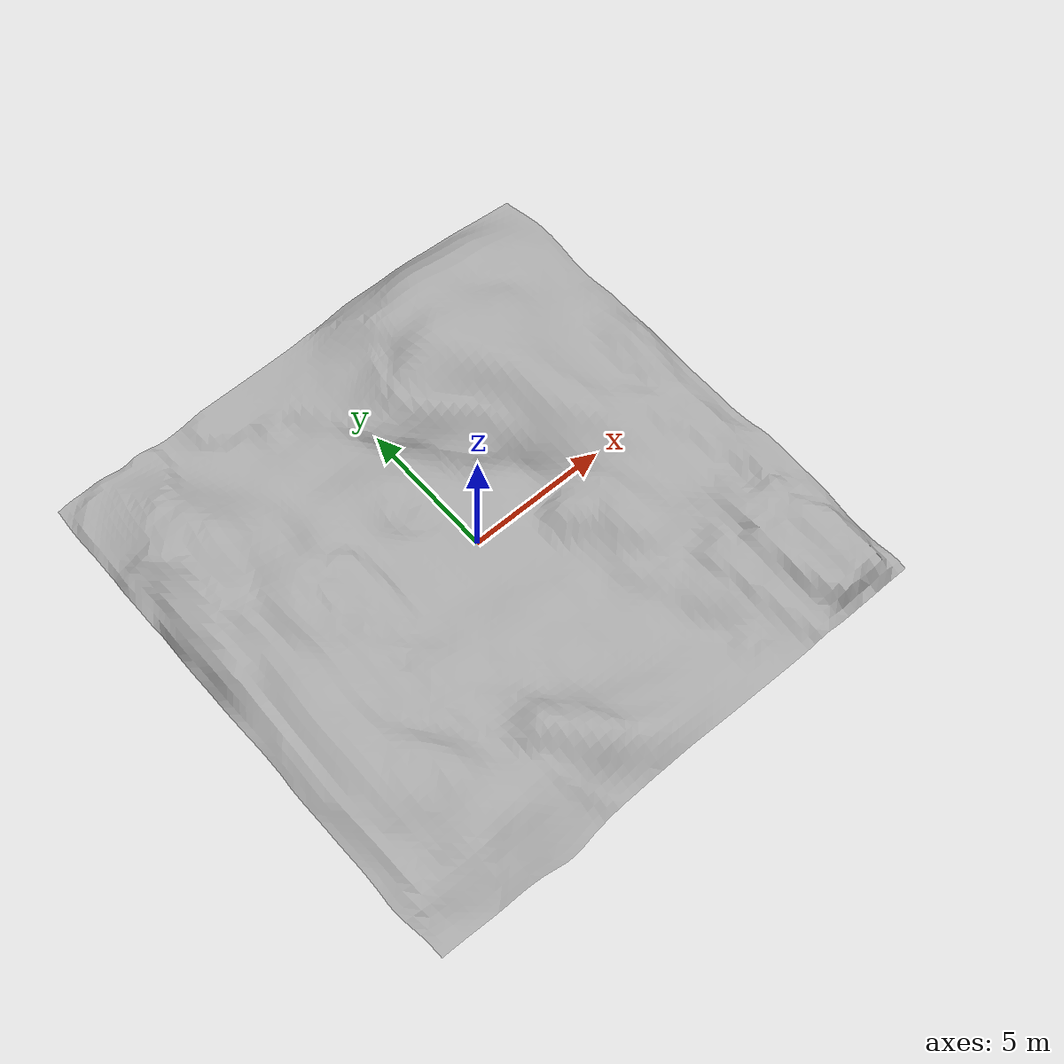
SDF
<?xml version="1.0" ?>
<sdf version="1.4">
  <model name="dune1">
    <static>true</static>
    <pose>0 0 0 0 0 0</pose>
    <link name="link">
      <collision name="collision">
        <geometry>
          <mesh>
            <uri>model://dune1/meshes/dune1.dae</uri>
            <scale>0.30 0.30 0.30</scale>
          </mesh>
        </geometry>
        <surface>
          <friction>
            <ode>
              <mu>2</mu>
              <mu2>0.01</mu2>
            </ode>
          </friction>
        </surface>
      </collision>
      <visual name="visual">
        <geometry>
          <mesh>
            <uri>model://dune1/meshes/dune1.dae</uri>
            <scale>0.30 0.30 0.30</scale>
          </mesh>
        </geometry>
        <material>
          <script>
          	<uri>model://materials/scripts</uri>
          	<uri>model://materials/textures</uri>
          	<name>sand/floor</name>
          </script>
        </material>
      </visual>
    </link>
  </model>
</sdf>
